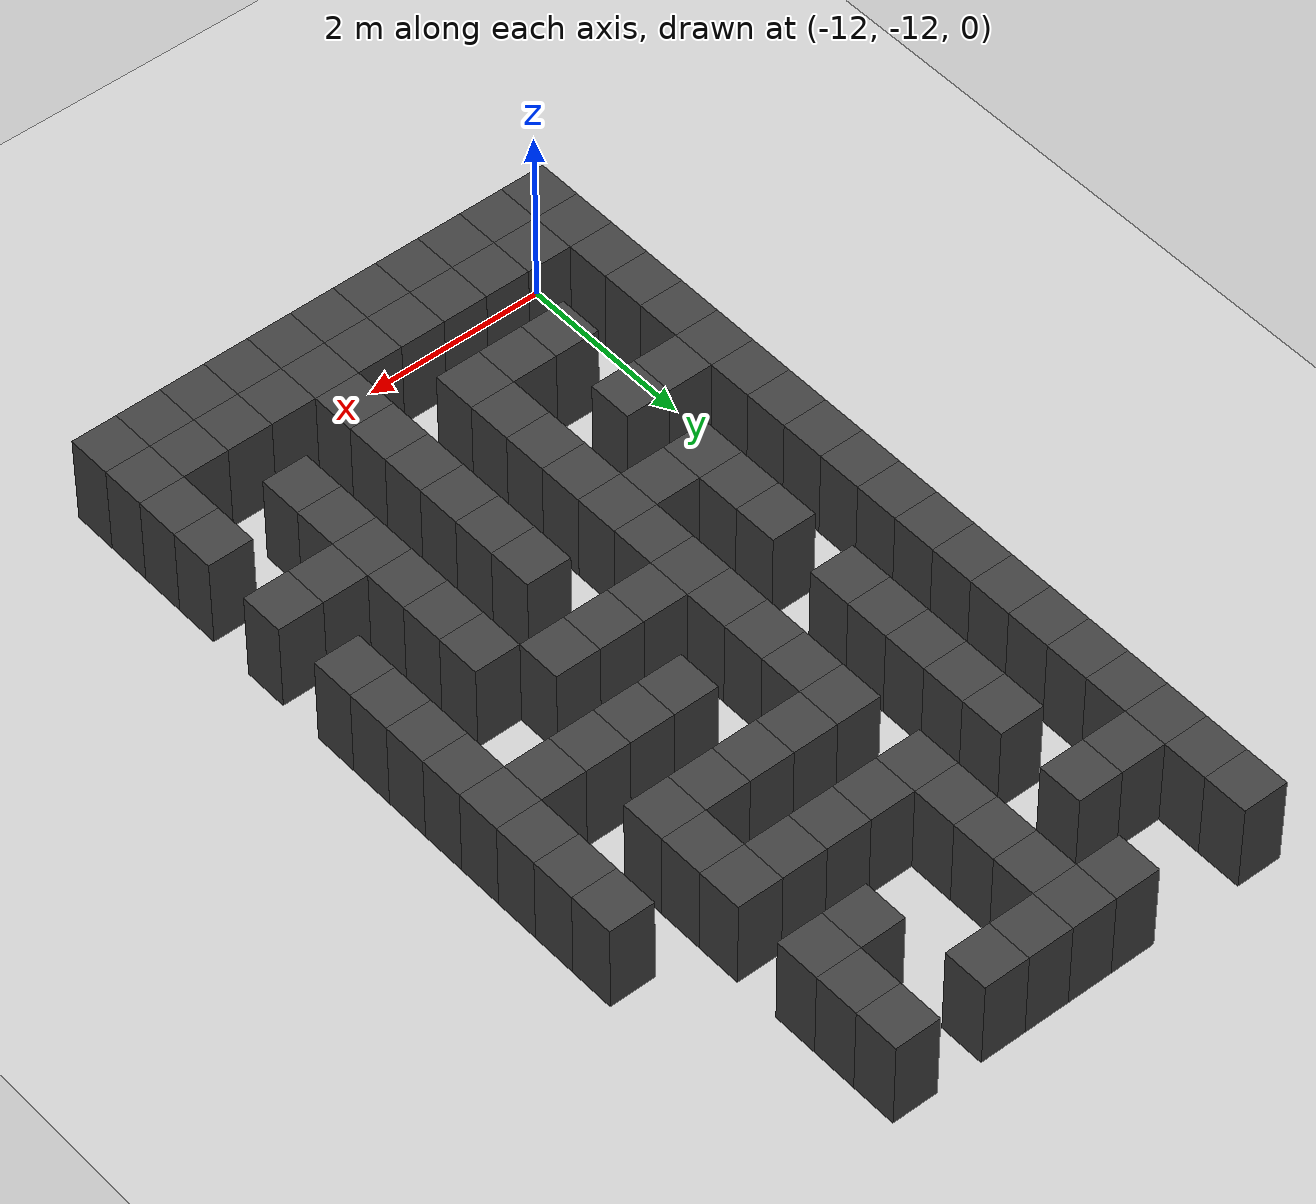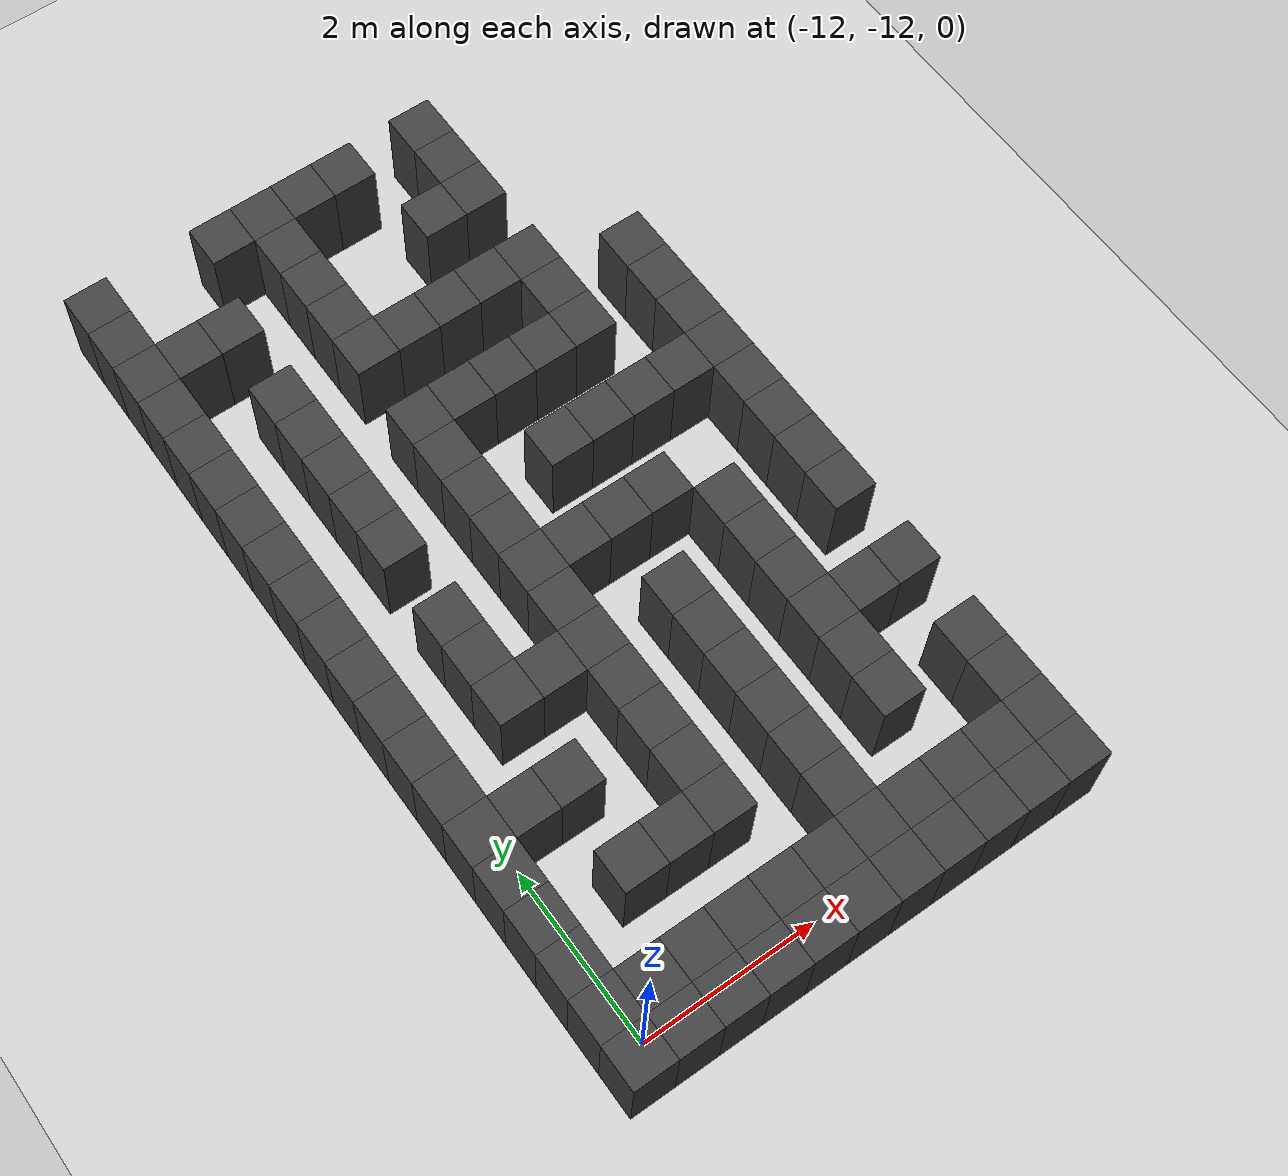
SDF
<sdf version="1.7">
 <world name="map_18596">
  <model name="ground_plane">
   <static>true</static>
   <link name="link">
    <collision name="collision">
     <geometry><plane><normal>0 0 1</normal><size>200 200</size></plane></geometry>
    </collision>
    <visual name="visual">
     <geometry><plane><normal>0 0 1</normal><size>200 200</size></plane></geometry>
     <material><ambient>0.8 0.8 0.8 1</ambient><diffuse>0.8 0.8 0.8 1</diffuse></material>
    </visual>
   </link>
  </model>
  <model name="maze_environment">
   <static>true</static>
   <link name="wall_760">
    <pose>-12.250 -2.750 0.500 0 0 0</pose>
    <collision name="col"><geometry><box><size>0.5 0.5 1.0</size></box></geometry></collision>
    <visual name="vis">
     <geometry><box><size>0.5 0.5 1.0</size></box></geometry>
     <material><ambient>0.15 0.15 0.15 1</ambient><diffuse>0.25 0.25 0.25 1</diffuse></material>
    </visual>
   </link>
   <link name="wall_761">
    <pose>-10.750 -2.750 0.500 0 0 0</pose>
    <collision name="col"><geometry><box><size>0.5 0.5 1.0</size></box></geometry></collision>
    <visual name="vis">
     <geometry><box><size>0.5 0.5 1.0</size></box></geometry>
     <material><ambient>0.15 0.15 0.15 1</ambient><diffuse>0.25 0.25 0.25 1</diffuse></material>
    </visual>
   </link>
   <link name="wall_762">
    <pose>-10.250 -2.750 0.500 0 0 0</pose>
    <collision name="col"><geometry><box><size>0.5 0.5 1.0</size></box></geometry></collision>
    <visual name="vis">
     <geometry><box><size>0.5 0.5 1.0</size></box></geometry>
     <material><ambient>0.15 0.15 0.15 1</ambient><diffuse>0.25 0.25 0.25 1</diffuse></material>
    </visual>
   </link>
   <link name="wall_763">
    <pose>-9.750 -2.750 0.500 0 0 0</pose>
    <collision name="col"><geometry><box><size>0.5 0.5 1.0</size></box></geometry></collision>
    <visual name="vis">
     <geometry><box><size>0.5 0.5 1.0</size></box></geometry>
     <material><ambient>0.15 0.15 0.15 1</ambient><diffuse>0.25 0.25 0.25 1</diffuse></material>
    </visual>
   </link>
   <link name="wall_764">
    <pose>-9.250 -2.750 0.500 0 0 0</pose>
    <collision name="col"><geometry><box><size>0.5 0.5 1.0</size></box></geometry></collision>
    <visual name="vis">
     <geometry><box><size>0.5 0.5 1.0</size></box></geometry>
     <material><ambient>0.15 0.15 0.15 1</ambient><diffuse>0.25 0.25 0.25 1</diffuse></material>
    </visual>
   </link>
   <link name="wall_765">
    <pose>-8.250 -2.750 0.500 0 0 0</pose>
    <collision name="col"><geometry><box><size>0.5 0.5 1.0</size></box></geometry></collision>
    <visual name="vis">
     <geometry><box><size>0.5 0.5 1.0</size></box></geometry>
     <material><ambient>0.15 0.15 0.15 1</ambient><diffuse>0.25 0.25 0.25 1</diffuse></material>
    </visual>
   </link>
   <link name="wall_797">
    <pose>-12.250 -3.250 0.500 0 0 0</pose>
    <collision name="col"><geometry><box><size>0.5 0.5 1.0</size></box></geometry></collision>
    <visual name="vis">
     <geometry><box><size>0.5 0.5 1.0</size></box></geometry>
     <material><ambient>0.15 0.15 0.15 1</ambient><diffuse>0.25 0.25 0.25 1</diffuse></material>
    </visual>
   </link>
   <link name="wall_798">
    <pose>-10.250 -3.250 0.500 0 0 0</pose>
    <collision name="col"><geometry><box><size>0.5 0.5 1.0</size></box></geometry></collision>
    <visual name="vis">
     <geometry><box><size>0.5 0.5 1.0</size></box></geometry>
     <material><ambient>0.15 0.15 0.15 1</ambient><diffuse>0.25 0.25 0.25 1</diffuse></material>
    </visual>
   </link>
   <link name="wall_799">
    <pose>-8.250 -3.250 0.500 0 0 0</pose>
    <collision name="col"><geometry><box><size>0.5 0.5 1.0</size></box></geometry></collision>
    <visual name="vis">
     <geometry><box><size>0.5 0.5 1.0</size></box></geometry>
     <material><ambient>0.15 0.15 0.15 1</ambient><diffuse>0.25 0.25 0.25 1</diffuse></material>
    </visual>
   </link>
   <link name="wall_811">
    <pose>-12.250 -3.750 0.500 0 0 0</pose>
    <collision name="col"><geometry><box><size>0.5 0.5 1.0</size></box></geometry></collision>
    <visual name="vis">
     <geometry><box><size>0.5 0.5 1.0</size></box></geometry>
     <material><ambient>0.15 0.15 0.15 1</ambient><diffuse>0.25 0.25 0.25 1</diffuse></material>
    </visual>
   </link>
   <link name="wall_812">
    <pose>-11.750 -3.750 0.500 0 0 0</pose>
    <collision name="col"><geometry><box><size>0.5 0.5 1.0</size></box></geometry></collision>
    <visual name="vis">
     <geometry><box><size>0.5 0.5 1.0</size></box></geometry>
     <material><ambient>0.15 0.15 0.15 1</ambient><diffuse>0.25 0.25 0.25 1</diffuse></material>
    </visual>
   </link>
   <link name="wall_813">
    <pose>-11.250 -3.750 0.500 0 0 0</pose>
    <collision name="col"><geometry><box><size>0.5 0.5 1.0</size></box></geometry></collision>
    <visual name="vis">
     <geometry><box><size>0.5 0.5 1.0</size></box></geometry>
     <material><ambient>0.15 0.15 0.15 1</ambient><diffuse>0.25 0.25 0.25 1</diffuse></material>
    </visual>
   </link>
   <link name="wall_814">
    <pose>-10.250 -3.750 0.500 0 0 0</pose>
    <collision name="col"><geometry><box><size>0.5 0.5 1.0</size></box></geometry></collision>
    <visual name="vis">
     <geometry><box><size>0.5 0.5 1.0</size></box></geometry>
     <material><ambient>0.15 0.15 0.15 1</ambient><diffuse>0.25 0.25 0.25 1</diffuse></material>
    </visual>
   </link>
   <link name="wall_815">
    <pose>-8.750 -3.750 0.500 0 0 0</pose>
    <collision name="col"><geometry><box><size>0.5 0.5 1.0</size></box></geometry></collision>
    <visual name="vis">
     <geometry><box><size>0.5 0.5 1.0</size></box></geometry>
     <material><ambient>0.15 0.15 0.15 1</ambient><diffuse>0.25 0.25 0.25 1</diffuse></material>
    </visual>
   </link>
   <link name="wall_816">
    <pose>-8.250 -3.750 0.500 0 0 0</pose>
    <collision name="col"><geometry><box><size>0.5 0.5 1.0</size></box></geometry></collision>
    <visual name="vis">
     <geometry><box><size>0.5 0.5 1.0</size></box></geometry>
     <material><ambient>0.15 0.15 0.15 1</ambient><diffuse>0.25 0.25 0.25 1</diffuse></material>
    </visual>
   </link>
   <link name="wall_843">
    <pose>-12.250 -4.250 0.500 0 0 0</pose>
    <collision name="col"><geometry><box><size>0.5 0.5 1.0</size></box></geometry></collision>
    <visual name="vis">
     <geometry><box><size>0.5 0.5 1.0</size></box></geometry>
     <material><ambient>0.15 0.15 0.15 1</ambient><diffuse>0.25 0.25 0.25 1</diffuse></material>
    </visual>
   </link>
   <link name="wall_844">
    <pose>-10.250 -4.250 0.500 0 0 0</pose>
    <collision name="col"><geometry><box><size>0.5 0.5 1.0</size></box></geometry></collision>
    <visual name="vis">
     <geometry><box><size>0.5 0.5 1.0</size></box></geometry>
     <material><ambient>0.15 0.15 0.15 1</ambient><diffuse>0.25 0.25 0.25 1</diffuse></material>
    </visual>
   </link>
   <link name="wall_857">
    <pose>-12.250 -4.750 0.500 0 0 0</pose>
    <collision name="col"><geometry><box><size>0.5 0.5 1.0</size></box></geometry></collision>
    <visual name="vis">
     <geometry><box><size>0.5 0.5 1.0</size></box></geometry>
     <material><ambient>0.15 0.15 0.15 1</ambient><diffuse>0.25 0.25 0.25 1</diffuse></material>
    </visual>
   </link>
   <link name="wall_858">
    <pose>-11.250 -4.750 0.500 0 0 0</pose>
    <collision name="col"><geometry><box><size>0.5 0.5 1.0</size></box></geometry></collision>
    <visual name="vis">
     <geometry><box><size>0.5 0.5 1.0</size></box></geometry>
     <material><ambient>0.15 0.15 0.15 1</ambient><diffuse>0.25 0.25 0.25 1</diffuse></material>
    </visual>
   </link>
   <link name="wall_859">
    <pose>-10.250 -4.750 0.500 0 0 0</pose>
    <collision name="col"><geometry><box><size>0.5 0.5 1.0</size></box></geometry></collision>
    <visual name="vis">
     <geometry><box><size>0.5 0.5 1.0</size></box></geometry>
     <material><ambient>0.15 0.15 0.15 1</ambient><diffuse>0.25 0.25 0.25 1</diffuse></material>
    </visual>
   </link>
   <link name="wall_860">
    <pose>-9.750 -4.750 0.500 0 0 0</pose>
    <collision name="col"><geometry><box><size>0.5 0.5 1.0</size></box></geometry></collision>
    <visual name="vis">
     <geometry><box><size>0.5 0.5 1.0</size></box></geometry>
     <material><ambient>0.15 0.15 0.15 1</ambient><diffuse>0.25 0.25 0.25 1</diffuse></material>
    </visual>
   </link>
   <link name="wall_861">
    <pose>-9.250 -4.750 0.500 0 0 0</pose>
    <collision name="col"><geometry><box><size>0.5 0.5 1.0</size></box></geometry></collision>
    <visual name="vis">
     <geometry><box><size>0.5 0.5 1.0</size></box></geometry>
     <material><ambient>0.15 0.15 0.15 1</ambient><diffuse>0.25 0.25 0.25 1</diffuse></material>
    </visual>
   </link>
   <link name="wall_862">
    <pose>-8.750 -4.750 0.500 0 0 0</pose>
    <collision name="col"><geometry><box><size>0.5 0.5 1.0</size></box></geometry></collision>
    <visual name="vis">
     <geometry><box><size>0.5 0.5 1.0</size></box></geometry>
     <material><ambient>0.15 0.15 0.15 1</ambient><diffuse>0.25 0.25 0.25 1</diffuse></material>
    </visual>
   </link>
   <link name="wall_863">
    <pose>-8.250 -4.750 0.500 0 0 0</pose>
    <collision name="col"><geometry><box><size>0.5 0.5 1.0</size></box></geometry></collision>
    <visual name="vis">
     <geometry><box><size>0.5 0.5 1.0</size></box></geometry>
     <material><ambient>0.15 0.15 0.15 1</ambient><diffuse>0.25 0.25 0.25 1</diffuse></material>
    </visual>
   </link>
   <link name="wall_893">
    <pose>-12.250 -5.250 0.500 0 0 0</pose>
    <collision name="col"><geometry><box><size>0.5 0.5 1.0</size></box></geometry></collision>
    <visual name="vis">
     <geometry><box><size>0.5 0.5 1.0</size></box></geometry>
     <material><ambient>0.15 0.15 0.15 1</ambient><diffuse>0.25 0.25 0.25 1</diffuse></material>
    </visual>
   </link>
   <link name="wall_894">
    <pose>-11.250 -5.250 0.500 0 0 0</pose>
    <collision name="col"><geometry><box><size>0.5 0.5 1.0</size></box></geometry></collision>
    <visual name="vis">
     <geometry><box><size>0.5 0.5 1.0</size></box></geometry>
     <material><ambient>0.15 0.15 0.15 1</ambient><diffuse>0.25 0.25 0.25 1</diffuse></material>
    </visual>
   </link>
   <link name="wall_895">
    <pose>-8.250 -5.250 0.500 0 0 0</pose>
    <collision name="col"><geometry><box><size>0.5 0.5 1.0</size></box></geometry></collision>
    <visual name="vis">
     <geometry><box><size>0.5 0.5 1.0</size></box></geometry>
     <material><ambient>0.15 0.15 0.15 1</ambient><diffuse>0.25 0.25 0.25 1</diffuse></material>
    </visual>
   </link>
   <link name="wall_896">
    <pose>-7.250 -5.250 0.500 0 0 0</pose>
    <collision name="col"><geometry><box><size>0.5 0.5 1.0</size></box></geometry></collision>
    <visual name="vis">
     <geometry><box><size>0.5 0.5 1.0</size></box></geometry>
     <material><ambient>0.15 0.15 0.15 1</ambient><diffuse>0.25 0.25 0.25 1</diffuse></material>
    </visual>
   </link>
   <link name="wall_907">
    <pose>-12.250 -5.750 0.500 0 0 0</pose>
    <collision name="col"><geometry><box><size>0.5 0.5 1.0</size></box></geometry></collision>
    <visual name="vis">
     <geometry><box><size>0.5 0.5 1.0</size></box></geometry>
     <material><ambient>0.15 0.15 0.15 1</ambient><diffuse>0.25 0.25 0.25 1</diffuse></material>
    </visual>
   </link>
   <link name="wall_908">
    <pose>-11.250 -5.750 0.500 0 0 0</pose>
    <collision name="col"><geometry><box><size>0.5 0.5 1.0</size></box></geometry></collision>
    <visual name="vis">
     <geometry><box><size>0.5 0.5 1.0</size></box></geometry>
     <material><ambient>0.15 0.15 0.15 1</ambient><diffuse>0.25 0.25 0.25 1</diffuse></material>
    </visual>
   </link>
   <link name="wall_909">
    <pose>-10.250 -5.750 0.500 0 0 0</pose>
    <collision name="col"><geometry><box><size>0.5 0.5 1.0</size></box></geometry></collision>
    <visual name="vis">
     <geometry><box><size>0.5 0.5 1.0</size></box></geometry>
     <material><ambient>0.15 0.15 0.15 1</ambient><diffuse>0.25 0.25 0.25 1</diffuse></material>
    </visual>
   </link>
   <link name="wall_910">
    <pose>-9.750 -5.750 0.500 0 0 0</pose>
    <collision name="col"><geometry><box><size>0.5 0.5 1.0</size></box></geometry></collision>
    <visual name="vis">
     <geometry><box><size>0.5 0.5 1.0</size></box></geometry>
     <material><ambient>0.15 0.15 0.15 1</ambient><diffuse>0.25 0.25 0.25 1</diffuse></material>
    </visual>
   </link>
   <link name="wall_911">
    <pose>-9.250 -5.750 0.500 0 0 0</pose>
    <collision name="col"><geometry><box><size>0.5 0.5 1.0</size></box></geometry></collision>
    <visual name="vis">
     <geometry><box><size>0.5 0.5 1.0</size></box></geometry>
     <material><ambient>0.15 0.15 0.15 1</ambient><diffuse>0.25 0.25 0.25 1</diffuse></material>
    </visual>
   </link>
   <link name="wall_912">
    <pose>-8.750 -5.750 0.500 0 0 0</pose>
    <collision name="col"><geometry><box><size>0.5 0.5 1.0</size></box></geometry></collision>
    <visual name="vis">
     <geometry><box><size>0.5 0.5 1.0</size></box></geometry>
     <material><ambient>0.15 0.15 0.15 1</ambient><diffuse>0.25 0.25 0.25 1</diffuse></material>
    </visual>
   </link>
   <link name="wall_913">
    <pose>-8.250 -5.750 0.500 0 0 0</pose>
    <collision name="col"><geometry><box><size>0.5 0.5 1.0</size></box></geometry></collision>
    <visual name="vis">
     <geometry><box><size>0.5 0.5 1.0</size></box></geometry>
     <material><ambient>0.15 0.15 0.15 1</ambient><diffuse>0.25 0.25 0.25 1</diffuse></material>
    </visual>
   </link>
   <link name="wall_914">
    <pose>-7.250 -5.750 0.500 0 0 0</pose>
    <collision name="col"><geometry><box><size>0.5 0.5 1.0</size></box></geometry></collision>
    <visual name="vis">
     <geometry><box><size>0.5 0.5 1.0</size></box></geometry>
     <material><ambient>0.15 0.15 0.15 1</ambient><diffuse>0.25 0.25 0.25 1</diffuse></material>
    </visual>
   </link>
   <link name="wall_940">
    <pose>-12.250 -6.250 0.500 0 0 0</pose>
    <collision name="col"><geometry><box><size>0.5 0.5 1.0</size></box></geometry></collision>
    <visual name="vis">
     <geometry><box><size>0.5 0.5 1.0</size></box></geometry>
     <material><ambient>0.15 0.15 0.15 1</ambient><diffuse>0.25 0.25 0.25 1</diffuse></material>
    </visual>
   </link>
   <link name="wall_941">
    <pose>-11.250 -6.250 0.500 0 0 0</pose>
    <collision name="col"><geometry><box><size>0.5 0.5 1.0</size></box></geometry></collision>
    <visual name="vis">
     <geometry><box><size>0.5 0.5 1.0</size></box></geometry>
     <material><ambient>0.15 0.15 0.15 1</ambient><diffuse>0.25 0.25 0.25 1</diffuse></material>
    </visual>
   </link>
   <link name="wall_942">
    <pose>-10.250 -6.250 0.500 0 0 0</pose>
    <collision name="col"><geometry><box><size>0.5 0.5 1.0</size></box></geometry></collision>
    <visual name="vis">
     <geometry><box><size>0.5 0.5 1.0</size></box></geometry>
     <material><ambient>0.15 0.15 0.15 1</ambient><diffuse>0.25 0.25 0.25 1</diffuse></material>
    </visual>
   </link>
   <link name="wall_943">
    <pose>-7.250 -6.250 0.500 0 0 0</pose>
    <collision name="col"><geometry><box><size>0.5 0.5 1.0</size></box></geometry></collision>
    <visual name="vis">
     <geometry><box><size>0.5 0.5 1.0</size></box></geometry>
     <material><ambient>0.15 0.15 0.15 1</ambient><diffuse>0.25 0.25 0.25 1</diffuse></material>
    </visual>
   </link>
   <link name="wall_957">
    <pose>-12.250 -6.750 0.500 0 0 0</pose>
    <collision name="col"><geometry><box><size>0.5 0.5 1.0</size></box></geometry></collision>
    <visual name="vis">
     <geometry><box><size>0.5 0.5 1.0</size></box></geometry>
     <material><ambient>0.15 0.15 0.15 1</ambient><diffuse>0.25 0.25 0.25 1</diffuse></material>
    </visual>
   </link>
   <link name="wall_958">
    <pose>-11.250 -6.750 0.500 0 0 0</pose>
    <collision name="col"><geometry><box><size>0.5 0.5 1.0</size></box></geometry></collision>
    <visual name="vis">
     <geometry><box><size>0.5 0.5 1.0</size></box></geometry>
     <material><ambient>0.15 0.15 0.15 1</ambient><diffuse>0.25 0.25 0.25 1</diffuse></material>
    </visual>
   </link>
   <link name="wall_959">
    <pose>-10.250 -6.750 0.500 0 0 0</pose>
    <collision name="col"><geometry><box><size>0.5 0.5 1.0</size></box></geometry></collision>
    <visual name="vis">
     <geometry><box><size>0.5 0.5 1.0</size></box></geometry>
     <material><ambient>0.15 0.15 0.15 1</ambient><diffuse>0.25 0.25 0.25 1</diffuse></material>
    </visual>
   </link>
   <link name="wall_960">
    <pose>-9.250 -6.750 0.500 0 0 0</pose>
    <collision name="col"><geometry><box><size>0.5 0.5 1.0</size></box></geometry></collision>
    <visual name="vis">
     <geometry><box><size>0.5 0.5 1.0</size></box></geometry>
     <material><ambient>0.15 0.15 0.15 1</ambient><diffuse>0.25 0.25 0.25 1</diffuse></material>
    </visual>
   </link>
   <link name="wall_961">
    <pose>-8.750 -6.750 0.500 0 0 0</pose>
    <collision name="col"><geometry><box><size>0.5 0.5 1.0</size></box></geometry></collision>
    <visual name="vis">
     <geometry><box><size>0.5 0.5 1.0</size></box></geometry>
     <material><ambient>0.15 0.15 0.15 1</ambient><diffuse>0.25 0.25 0.25 1</diffuse></material>
    </visual>
   </link>
   <link name="wall_962">
    <pose>-8.250 -6.750 0.500 0 0 0</pose>
    <collision name="col"><geometry><box><size>0.5 0.5 1.0</size></box></geometry></collision>
    <visual name="vis">
     <geometry><box><size>0.5 0.5 1.0</size></box></geometry>
     <material><ambient>0.15 0.15 0.15 1</ambient><diffuse>0.25 0.25 0.25 1</diffuse></material>
    </visual>
   </link>
   <link name="wall_963">
    <pose>-7.750 -6.750 0.500 0 0 0</pose>
    <collision name="col"><geometry><box><size>0.5 0.5 1.0</size></box></geometry></collision>
    <visual name="vis">
     <geometry><box><size>0.5 0.5 1.0</size></box></geometry>
     <material><ambient>0.15 0.15 0.15 1</ambient><diffuse>0.25 0.25 0.25 1</diffuse></material>
    </visual>
   </link>
   <link name="wall_964">
    <pose>-7.250 -6.750 0.500 0 0 0</pose>
    <collision name="col"><geometry><box><size>0.5 0.5 1.0</size></box></geometry></collision>
    <visual name="vis">
     <geometry><box><size>0.5 0.5 1.0</size></box></geometry>
     <material><ambient>0.15 0.15 0.15 1</ambient><diffuse>0.25 0.25 0.25 1</diffuse></material>
    </visual>
   </link>
   <link name="wall_992">
    <pose>-12.250 -7.250 0.500 0 0 0</pose>
    <collision name="col"><geometry><box><size>0.5 0.5 1.0</size></box></geometry></collision>
    <visual name="vis">
     <geometry><box><size>0.5 0.5 1.0</size></box></geometry>
     <material><ambient>0.15 0.15 0.15 1</ambient><diffuse>0.25 0.25 0.25 1</diffuse></material>
    </visual>
   </link>
   <link name="wall_993">
    <pose>-10.250 -7.250 0.500 0 0 0</pose>
    <collision name="col"><geometry><box><size>0.5 0.5 1.0</size></box></geometry></collision>
    <visual name="vis">
     <geometry><box><size>0.5 0.5 1.0</size></box></geometry>
     <material><ambient>0.15 0.15 0.15 1</ambient><diffuse>0.25 0.25 0.25 1</diffuse></material>
    </visual>
   </link>
   <link name="wall_994">
    <pose>-7.250 -7.250 0.500 0 0 0</pose>
    <collision name="col"><geometry><box><size>0.5 0.5 1.0</size></box></geometry></collision>
    <visual name="vis">
     <geometry><box><size>0.5 0.5 1.0</size></box></geometry>
     <material><ambient>0.15 0.15 0.15 1</ambient><diffuse>0.25 0.25 0.25 1</diffuse></material>
    </visual>
   </link>
   <link name="wall_1008">
    <pose>-12.250 -7.750 0.500 0 0 0</pose>
    <collision name="col"><geometry><box><size>0.5 0.5 1.0</size></box></geometry></collision>
    <visual name="vis">
     <geometry><box><size>0.5 0.5 1.0</size></box></geometry>
     <material><ambient>0.15 0.15 0.15 1</ambient><diffuse>0.25 0.25 0.25 1</diffuse></material>
    </visual>
   </link>
   <link name="wall_1009">
    <pose>-11.250 -7.750 0.500 0 0 0</pose>
    <collision name="col"><geometry><box><size>0.5 0.5 1.0</size></box></geometry></collision>
    <visual name="vis">
     <geometry><box><size>0.5 0.5 1.0</size></box></geometry>
     <material><ambient>0.15 0.15 0.15 1</ambient><diffuse>0.25 0.25 0.25 1</diffuse></material>
    </visual>
   </link>
   <link name="wall_1010">
    <pose>-10.250 -7.750 0.500 0 0 0</pose>
    <collision name="col"><geometry><box><size>0.5 0.5 1.0</size></box></geometry></collision>
    <visual name="vis">
     <geometry><box><size>0.5 0.5 1.0</size></box></geometry>
     <material><ambient>0.15 0.15 0.15 1</ambient><diffuse>0.25 0.25 0.25 1</diffuse></material>
    </visual>
   </link>
   <link name="wall_1011">
    <pose>-9.750 -7.750 0.500 0 0 0</pose>
    <collision name="col"><geometry><box><size>0.5 0.5 1.0</size></box></geometry></collision>
    <visual name="vis">
     <geometry><box><size>0.5 0.5 1.0</size></box></geometry>
     <material><ambient>0.15 0.15 0.15 1</ambient><diffuse>0.25 0.25 0.25 1</diffuse></material>
    </visual>
   </link>
   <link name="wall_1012">
    <pose>-9.250 -7.750 0.500 0 0 0</pose>
    <collision name="col"><geometry><box><size>0.5 0.5 1.0</size></box></geometry></collision>
    <visual name="vis">
     <geometry><box><size>0.5 0.5 1.0</size></box></geometry>
     <material><ambient>0.15 0.15 0.15 1</ambient><diffuse>0.25 0.25 0.25 1</diffuse></material>
    </visual>
   </link>
   <link name="wall_1013">
    <pose>-8.750 -7.750 0.500 0 0 0</pose>
    <collision name="col"><geometry><box><size>0.5 0.5 1.0</size></box></geometry></collision>
    <visual name="vis">
     <geometry><box><size>0.5 0.5 1.0</size></box></geometry>
     <material><ambient>0.15 0.15 0.15 1</ambient><diffuse>0.25 0.25 0.25 1</diffuse></material>
    </visual>
   </link>
   <link name="wall_1014">
    <pose>-7.250 -7.750 0.500 0 0 0</pose>
    <collision name="col"><geometry><box><size>0.5 0.5 1.0</size></box></geometry></collision>
    <visual name="vis">
     <geometry><box><size>0.5 0.5 1.0</size></box></geometry>
     <material><ambient>0.15 0.15 0.15 1</ambient><diffuse>0.25 0.25 0.25 1</diffuse></material>
    </visual>
   </link>
   <link name="wall_1042">
    <pose>-12.250 -8.250 0.500 0 0 0</pose>
    <collision name="col"><geometry><box><size>0.5 0.5 1.0</size></box></geometry></collision>
    <visual name="vis">
     <geometry><box><size>0.5 0.5 1.0</size></box></geometry>
     <material><ambient>0.15 0.15 0.15 1</ambient><diffuse>0.25 0.25 0.25 1</diffuse></material>
    </visual>
   </link>
   <link name="wall_1043">
    <pose>-11.250 -8.250 0.500 0 0 0</pose>
    <collision name="col"><geometry><box><size>0.5 0.5 1.0</size></box></geometry></collision>
    <visual name="vis">
     <geometry><box><size>0.5 0.5 1.0</size></box></geometry>
     <material><ambient>0.15 0.15 0.15 1</ambient><diffuse>0.25 0.25 0.25 1</diffuse></material>
    </visual>
   </link>
   <link name="wall_1044">
    <pose>-10.250 -8.250 0.500 0 0 0</pose>
    <collision name="col"><geometry><box><size>0.5 0.5 1.0</size></box></geometry></collision>
    <visual name="vis">
     <geometry><box><size>0.5 0.5 1.0</size></box></geometry>
     <material><ambient>0.15 0.15 0.15 1</ambient><diffuse>0.25 0.25 0.25 1</diffuse></material>
    </visual>
   </link>
   <link name="wall_1045">
    <pose>-8.250 -8.250 0.500 0 0 0</pose>
    <collision name="col"><geometry><box><size>0.5 0.5 1.0</size></box></geometry></collision>
    <visual name="vis">
     <geometry><box><size>0.5 0.5 1.0</size></box></geometry>
     <material><ambient>0.15 0.15 0.15 1</ambient><diffuse>0.25 0.25 0.25 1</diffuse></material>
    </visual>
   </link>
   <link name="wall_1046">
    <pose>-7.250 -8.250 0.500 0 0 0</pose>
    <collision name="col"><geometry><box><size>0.5 0.5 1.0</size></box></geometry></collision>
    <visual name="vis">
     <geometry><box><size>0.5 0.5 1.0</size></box></geometry>
     <material><ambient>0.15 0.15 0.15 1</ambient><diffuse>0.25 0.25 0.25 1</diffuse></material>
    </visual>
   </link>
   <link name="wall_1056">
    <pose>-12.250 -8.750 0.500 0 0 0</pose>
    <collision name="col"><geometry><box><size>0.5 0.5 1.0</size></box></geometry></collision>
    <visual name="vis">
     <geometry><box><size>0.5 0.5 1.0</size></box></geometry>
     <material><ambient>0.15 0.15 0.15 1</ambient><diffuse>0.25 0.25 0.25 1</diffuse></material>
    </visual>
   </link>
   <link name="wall_1057">
    <pose>-11.250 -8.750 0.500 0 0 0</pose>
    <collision name="col"><geometry><box><size>0.5 0.5 1.0</size></box></geometry></collision>
    <visual name="vis">
     <geometry><box><size>0.5 0.5 1.0</size></box></geometry>
     <material><ambient>0.15 0.15 0.15 1</ambient><diffuse>0.25 0.25 0.25 1</diffuse></material>
    </visual>
   </link>
   <link name="wall_1058">
    <pose>-10.750 -8.750 0.500 0 0 0</pose>
    <collision name="col"><geometry><box><size>0.5 0.5 1.0</size></box></geometry></collision>
    <visual name="vis">
     <geometry><box><size>0.5 0.5 1.0</size></box></geometry>
     <material><ambient>0.15 0.15 0.15 1</ambient><diffuse>0.25 0.25 0.25 1</diffuse></material>
    </visual>
   </link>
   <link name="wall_1059">
    <pose>-10.250 -8.750 0.500 0 0 0</pose>
    <collision name="col"><geometry><box><size>0.5 0.5 1.0</size></box></geometry></collision>
    <visual name="vis">
     <geometry><box><size>0.5 0.5 1.0</size></box></geometry>
     <material><ambient>0.15 0.15 0.15 1</ambient><diffuse>0.25 0.25 0.25 1</diffuse></material>
    </visual>
   </link>
   <link name="wall_1060">
    <pose>-9.250 -8.750 0.500 0 0 0</pose>
    <collision name="col"><geometry><box><size>0.5 0.5 1.0</size></box></geometry></collision>
    <visual name="vis">
     <geometry><box><size>0.5 0.5 1.0</size></box></geometry>
     <material><ambient>0.15 0.15 0.15 1</ambient><diffuse>0.25 0.25 0.25 1</diffuse></material>
    </visual>
   </link>
   <link name="wall_1061">
    <pose>-8.250 -8.750 0.500 0 0 0</pose>
    <collision name="col"><geometry><box><size>0.5 0.5 1.0</size></box></geometry></collision>
    <visual name="vis">
     <geometry><box><size>0.5 0.5 1.0</size></box></geometry>
     <material><ambient>0.15 0.15 0.15 1</ambient><diffuse>0.25 0.25 0.25 1</diffuse></material>
    </visual>
   </link>
   <link name="wall_1062">
    <pose>-7.250 -8.750 0.500 0 0 0</pose>
    <collision name="col"><geometry><box><size>0.5 0.5 1.0</size></box></geometry></collision>
    <visual name="vis">
     <geometry><box><size>0.5 0.5 1.0</size></box></geometry>
     <material><ambient>0.15 0.15 0.15 1</ambient><diffuse>0.25 0.25 0.25 1</diffuse></material>
    </visual>
   </link>
   <link name="wall_1091">
    <pose>-12.250 -9.250 0.500 0 0 0</pose>
    <collision name="col"><geometry><box><size>0.5 0.5 1.0</size></box></geometry></collision>
    <visual name="vis">
     <geometry><box><size>0.5 0.5 1.0</size></box></geometry>
     <material><ambient>0.15 0.15 0.15 1</ambient><diffuse>0.25 0.25 0.25 1</diffuse></material>
    </visual>
   </link>
   <link name="wall_1092">
    <pose>-10.250 -9.250 0.500 0 0 0</pose>
    <collision name="col"><geometry><box><size>0.5 0.5 1.0</size></box></geometry></collision>
    <visual name="vis">
     <geometry><box><size>0.5 0.5 1.0</size></box></geometry>
     <material><ambient>0.15 0.15 0.15 1</ambient><diffuse>0.25 0.25 0.25 1</diffuse></material>
    </visual>
   </link>
   <link name="wall_1093">
    <pose>-9.250 -9.250 0.500 0 0 0</pose>
    <collision name="col"><geometry><box><size>0.5 0.5 1.0</size></box></geometry></collision>
    <visual name="vis">
     <geometry><box><size>0.5 0.5 1.0</size></box></geometry>
     <material><ambient>0.15 0.15 0.15 1</ambient><diffuse>0.25 0.25 0.25 1</diffuse></material>
    </visual>
   </link>
   <link name="wall_1094">
    <pose>-8.250 -9.250 0.500 0 0 0</pose>
    <collision name="col"><geometry><box><size>0.5 0.5 1.0</size></box></geometry></collision>
    <visual name="vis">
     <geometry><box><size>0.5 0.5 1.0</size></box></geometry>
     <material><ambient>0.15 0.15 0.15 1</ambient><diffuse>0.25 0.25 0.25 1</diffuse></material>
    </visual>
   </link>
   <link name="wall_1105">
    <pose>-12.250 -9.750 0.500 0 0 0</pose>
    <collision name="col"><geometry><box><size>0.5 0.5 1.0</size></box></geometry></collision>
    <visual name="vis">
     <geometry><box><size>0.5 0.5 1.0</size></box></geometry>
     <material><ambient>0.15 0.15 0.15 1</ambient><diffuse>0.25 0.25 0.25 1</diffuse></material>
    </visual>
   </link>
   <link name="wall_1106">
    <pose>-11.750 -9.750 0.500 0 0 0</pose>
    <collision name="col"><geometry><box><size>0.5 0.5 1.0</size></box></geometry></collision>
    <visual name="vis">
     <geometry><box><size>0.5 0.5 1.0</size></box></geometry>
     <material><ambient>0.15 0.15 0.15 1</ambient><diffuse>0.25 0.25 0.25 1</diffuse></material>
    </visual>
   </link>
   <link name="wall_1107">
    <pose>-11.250 -9.750 0.500 0 0 0</pose>
    <collision name="col"><geometry><box><size>0.5 0.5 1.0</size></box></geometry></collision>
    <visual name="vis">
     <geometry><box><size>0.5 0.5 1.0</size></box></geometry>
     <material><ambient>0.15 0.15 0.15 1</ambient><diffuse>0.25 0.25 0.25 1</diffuse></material>
    </visual>
   </link>
   <link name="wall_1108">
    <pose>-10.250 -9.750 0.500 0 0 0</pose>
    <collision name="col"><geometry><box><size>0.5 0.5 1.0</size></box></geometry></collision>
    <visual name="vis">
     <geometry><box><size>0.5 0.5 1.0</size></box></geometry>
     <material><ambient>0.15 0.15 0.15 1</ambient><diffuse>0.25 0.25 0.25 1</diffuse></material>
    </visual>
   </link>
   <link name="wall_1109">
    <pose>-9.250 -9.750 0.500 0 0 0</pose>
    <collision name="col"><geometry><box><size>0.5 0.5 1.0</size></box></geometry></collision>
    <visual name="vis">
     <geometry><box><size>0.5 0.5 1.0</size></box></geometry>
     <material><ambient>0.15 0.15 0.15 1</ambient><diffuse>0.25 0.25 0.25 1</diffuse></material>
    </visual>
   </link>
   <link name="wall_1110">
    <pose>-8.250 -9.750 0.500 0 0 0</pose>
    <collision name="col"><geometry><box><size>0.5 0.5 1.0</size></box></geometry></collision>
    <visual name="vis">
     <geometry><box><size>0.5 0.5 1.0</size></box></geometry>
     <material><ambient>0.15 0.15 0.15 1</ambient><diffuse>0.25 0.25 0.25 1</diffuse></material>
    </visual>
   </link>
   <link name="wall_1111">
    <pose>-7.750 -9.750 0.500 0 0 0</pose>
    <collision name="col"><geometry><box><size>0.5 0.5 1.0</size></box></geometry></collision>
    <visual name="vis">
     <geometry><box><size>0.5 0.5 1.0</size></box></geometry>
     <material><ambient>0.15 0.15 0.15 1</ambient><diffuse>0.25 0.25 0.25 1</diffuse></material>
    </visual>
   </link>
   <link name="wall_1112">
    <pose>-7.250 -9.750 0.500 0 0 0</pose>
    <collision name="col"><geometry><box><size>0.5 0.5 1.0</size></box></geometry></collision>
    <visual name="vis">
     <geometry><box><size>0.5 0.5 1.0</size></box></geometry>
     <material><ambient>0.15 0.15 0.15 1</ambient><diffuse>0.25 0.25 0.25 1</diffuse></material>
    </visual>
   </link>
   <link name="wall_1145">
    <pose>-12.250 -10.250 0.500 0 0 0</pose>
    <collision name="col"><geometry><box><size>0.5 0.5 1.0</size></box></geometry></collision>
    <visual name="vis">
     <geometry><box><size>0.5 0.5 1.0</size></box></geometry>
     <material><ambient>0.15 0.15 0.15 1</ambient><diffuse>0.25 0.25 0.25 1</diffuse></material>
    </visual>
   </link>
   <link name="wall_1146">
    <pose>-10.250 -10.250 0.500 0 0 0</pose>
    <collision name="col"><geometry><box><size>0.5 0.5 1.0</size></box></geometry></collision>
    <visual name="vis">
     <geometry><box><size>0.5 0.5 1.0</size></box></geometry>
     <material><ambient>0.15 0.15 0.15 1</ambient><diffuse>0.25 0.25 0.25 1</diffuse></material>
    </visual>
   </link>
   <link name="wall_1147">
    <pose>-9.250 -10.250 0.500 0 0 0</pose>
    <collision name="col"><geometry><box><size>0.5 0.5 1.0</size></box></geometry></collision>
    <visual name="vis">
     <geometry><box><size>0.5 0.5 1.0</size></box></geometry>
     <material><ambient>0.15 0.15 0.15 1</ambient><diffuse>0.25 0.25 0.25 1</diffuse></material>
    </visual>
   </link>
   <link name="wall_1148">
    <pose>-8.250 -10.250 0.500 0 0 0</pose>
    <collision name="col"><geometry><box><size>0.5 0.5 1.0</size></box></geometry></collision>
    <visual name="vis">
     <geometry><box><size>0.5 0.5 1.0</size></box></geometry>
     <material><ambient>0.15 0.15 0.15 1</ambient><diffuse>0.25 0.25 0.25 1</diffuse></material>
    </visual>
   </link>
   <link name="wall_1159">
    <pose>-12.250 -10.750 0.500 0 0 0</pose>
    <collision name="col"><geometry><box><size>0.5 0.5 1.0</size></box></geometry></collision>
    <visual name="vis">
     <geometry><box><size>0.5 0.5 1.0</size></box></geometry>
     <material><ambient>0.15 0.15 0.15 1</ambient><diffuse>0.25 0.25 0.25 1</diffuse></material>
    </visual>
   </link>
   <link name="wall_1160">
    <pose>-11.250 -10.750 0.500 0 0 0</pose>
    <collision name="col"><geometry><box><size>0.5 0.5 1.0</size></box></geometry></collision>
    <visual name="vis">
     <geometry><box><size>0.5 0.5 1.0</size></box></geometry>
     <material><ambient>0.15 0.15 0.15 1</ambient><diffuse>0.25 0.25 0.25 1</diffuse></material>
    </visual>
   </link>
   <link name="wall_1161">
    <pose>-10.750 -10.750 0.500 0 0 0</pose>
    <collision name="col"><geometry><box><size>0.5 0.5 1.0</size></box></geometry></collision>
    <visual name="vis">
     <geometry><box><size>0.5 0.5 1.0</size></box></geometry>
     <material><ambient>0.15 0.15 0.15 1</ambient><diffuse>0.25 0.25 0.25 1</diffuse></material>
    </visual>
   </link>
   <link name="wall_1162">
    <pose>-10.250 -10.750 0.500 0 0 0</pose>
    <collision name="col"><geometry><box><size>0.5 0.5 1.0</size></box></geometry></collision>
    <visual name="vis">
     <geometry><box><size>0.5 0.5 1.0</size></box></geometry>
     <material><ambient>0.15 0.15 0.15 1</ambient><diffuse>0.25 0.25 0.25 1</diffuse></material>
    </visual>
   </link>
   <link name="wall_1163">
    <pose>-9.250 -10.750 0.500 0 0 0</pose>
    <collision name="col"><geometry><box><size>0.5 0.5 1.0</size></box></geometry></collision>
    <visual name="vis">
     <geometry><box><size>0.5 0.5 1.0</size></box></geometry>
     <material><ambient>0.15 0.15 0.15 1</ambient><diffuse>0.25 0.25 0.25 1</diffuse></material>
    </visual>
   </link>
   <link name="wall_1164">
    <pose>-8.250 -10.750 0.500 0 0 0</pose>
    <collision name="col"><geometry><box><size>0.5 0.5 1.0</size></box></geometry></collision>
    <visual name="vis">
     <geometry><box><size>0.5 0.5 1.0</size></box></geometry>
     <material><ambient>0.15 0.15 0.15 1</ambient><diffuse>0.25 0.25 0.25 1</diffuse></material>
    </visual>
   </link>
   <link name="wall_1165">
    <pose>-7.250 -10.750 0.500 0 0 0</pose>
    <collision name="col"><geometry><box><size>0.5 0.5 1.0</size></box></geometry></collision>
    <visual name="vis">
     <geometry><box><size>0.5 0.5 1.0</size></box></geometry>
     <material><ambient>0.15 0.15 0.15 1</ambient><diffuse>0.25 0.25 0.25 1</diffuse></material>
    </visual>
   </link>
   <link name="wall_1194">
    <pose>-12.250 -11.250 0.500 0 0 0</pose>
    <collision name="col"><geometry><box><size>0.5 0.5 1.0</size></box></geometry></collision>
    <visual name="vis">
     <geometry><box><size>0.5 0.5 1.0</size></box></geometry>
     <material><ambient>0.15 0.15 0.15 1</ambient><diffuse>0.25 0.25 0.25 1</diffuse></material>
    </visual>
   </link>
   <link name="wall_1195">
    <pose>-9.250 -11.250 0.500 0 0 0</pose>
    <collision name="col"><geometry><box><size>0.5 0.5 1.0</size></box></geometry></collision>
    <visual name="vis">
     <geometry><box><size>0.5 0.5 1.0</size></box></geometry>
     <material><ambient>0.15 0.15 0.15 1</ambient><diffuse>0.25 0.25 0.25 1</diffuse></material>
    </visual>
   </link>
   <link name="wall_1196">
    <pose>-7.250 -11.250 0.500 0 0 0</pose>
    <collision name="col"><geometry><box><size>0.5 0.5 1.0</size></box></geometry></collision>
    <visual name="vis">
     <geometry><box><size>0.5 0.5 1.0</size></box></geometry>
     <material><ambient>0.15 0.15 0.15 1</ambient><diffuse>0.25 0.25 0.25 1</diffuse></material>
    </visual>
   </link>
   <link name="wall_1202">
    <pose>-12.250 -11.750 0.500 0 0 0</pose>
    <collision name="col"><geometry><box><size>0.5 0.5 1.0</size></box></geometry></collision>
    <visual name="vis">
     <geometry><box><size>0.5 0.5 1.0</size></box></geometry>
     <material><ambient>0.15 0.15 0.15 1</ambient><diffuse>0.25 0.25 0.25 1</diffuse></material>
    </visual>
   </link>
   <link name="wall_1203">
    <pose>-11.750 -11.750 0.500 0 0 0</pose>
    <collision name="col"><geometry><box><size>0.5 0.5 1.0</size></box></geometry></collision>
    <visual name="vis">
     <geometry><box><size>0.5 0.5 1.0</size></box></geometry>
     <material><ambient>0.15 0.15 0.15 1</ambient><diffuse>0.25 0.25 0.25 1</diffuse></material>
    </visual>
   </link>
   <link name="wall_1204">
    <pose>-11.250 -11.750 0.500 0 0 0</pose>
    <collision name="col"><geometry><box><size>0.5 0.5 1.0</size></box></geometry></collision>
    <visual name="vis">
     <geometry><box><size>0.5 0.5 1.0</size></box></geometry>
     <material><ambient>0.15 0.15 0.15 1</ambient><diffuse>0.25 0.25 0.25 1</diffuse></material>
    </visual>
   </link>
   <link name="wall_1205">
    <pose>-10.750 -11.750 0.500 0 0 0</pose>
    <collision name="col"><geometry><box><size>0.5 0.5 1.0</size></box></geometry></collision>
    <visual name="vis">
     <geometry><box><size>0.5 0.5 1.0</size></box></geometry>
     <material><ambient>0.15 0.15 0.15 1</ambient><diffuse>0.25 0.25 0.25 1</diffuse></material>
    </visual>
   </link>
   <link name="wall_1206">
    <pose>-10.250 -11.750 0.500 0 0 0</pose>
    <collision name="col"><geometry><box><size>0.5 0.5 1.0</size></box></geometry></collision>
    <visual name="vis">
     <geometry><box><size>0.5 0.5 1.0</size></box></geometry>
     <material><ambient>0.15 0.15 0.15 1</ambient><diffuse>0.25 0.25 0.25 1</diffuse></material>
    </visual>
   </link>
   <link name="wall_1207">
    <pose>-9.750 -11.750 0.500 0 0 0</pose>
    <collision name="col"><geometry><box><size>0.5 0.5 1.0</size></box></geometry></collision>
    <visual name="vis">
     <geometry><box><size>0.5 0.5 1.0</size></box></geometry>
     <material><ambient>0.15 0.15 0.15 1</ambient><diffuse>0.25 0.25 0.25 1</diffuse></material>
    </visual>
   </link>
   <link name="wall_1208">
    <pose>-9.250 -11.750 0.500 0 0 0</pose>
    <collision name="col"><geometry><box><size>0.5 0.5 1.0</size></box></geometry></collision>
    <visual name="vis">
     <geometry><box><size>0.5 0.5 1.0</size></box></geometry>
     <material><ambient>0.15 0.15 0.15 1</ambient><diffuse>0.25 0.25 0.25 1</diffuse></material>
    </visual>
   </link>
   <link name="wall_1209">
    <pose>-8.750 -11.750 0.500 0 0 0</pose>
    <collision name="col"><geometry><box><size>0.5 0.5 1.0</size></box></geometry></collision>
    <visual name="vis">
     <geometry><box><size>0.5 0.5 1.0</size></box></geometry>
     <material><ambient>0.15 0.15 0.15 1</ambient><diffuse>0.25 0.25 0.25 1</diffuse></material>
    </visual>
   </link>
   <link name="wall_1210">
    <pose>-8.250 -11.750 0.500 0 0 0</pose>
    <collision name="col"><geometry><box><size>0.5 0.5 1.0</size></box></geometry></collision>
    <visual name="vis">
     <geometry><box><size>0.5 0.5 1.0</size></box></geometry>
     <material><ambient>0.15 0.15 0.15 1</ambient><diffuse>0.25 0.25 0.25 1</diffuse></material>
    </visual>
   </link>
   <link name="wall_1211">
    <pose>-7.750 -11.750 0.500 0 0 0</pose>
    <collision name="col"><geometry><box><size>0.5 0.5 1.0</size></box></geometry></collision>
    <visual name="vis">
     <geometry><box><size>0.5 0.5 1.0</size></box></geometry>
     <material><ambient>0.15 0.15 0.15 1</ambient><diffuse>0.25 0.25 0.25 1</diffuse></material>
    </visual>
   </link>
   <link name="wall_1212">
    <pose>-7.250 -11.750 0.500 0 0 0</pose>
    <collision name="col"><geometry><box><size>0.5 0.5 1.0</size></box></geometry></collision>
    <visual name="vis">
     <geometry><box><size>0.5 0.5 1.0</size></box></geometry>
     <material><ambient>0.15 0.15 0.15 1</ambient><diffuse>0.25 0.25 0.25 1</diffuse></material>
    </visual>
   </link>
   <link name="wall_1250">
    <pose>-12.250 -12.250 0.500 0 0 0</pose>
    <collision name="col"><geometry><box><size>0.5 0.5 1.0</size></box></geometry></collision>
    <visual name="vis">
     <geometry><box><size>0.5 0.5 1.0</size></box></geometry>
     <material><ambient>0.15 0.15 0.15 1</ambient><diffuse>0.25 0.25 0.25 1</diffuse></material>
    </visual>
   </link>
   <link name="wall_1251">
    <pose>-11.750 -12.250 0.500 0 0 0</pose>
    <collision name="col"><geometry><box><size>0.5 0.5 1.0</size></box></geometry></collision>
    <visual name="vis">
     <geometry><box><size>0.5 0.5 1.0</size></box></geometry>
     <material><ambient>0.15 0.15 0.15 1</ambient><diffuse>0.25 0.25 0.25 1</diffuse></material>
    </visual>
   </link>
   <link name="wall_1252">
    <pose>-11.250 -12.250 0.500 0 0 0</pose>
    <collision name="col"><geometry><box><size>0.5 0.5 1.0</size></box></geometry></collision>
    <visual name="vis">
     <geometry><box><size>0.5 0.5 1.0</size></box></geometry>
     <material><ambient>0.15 0.15 0.15 1</ambient><diffuse>0.25 0.25 0.25 1</diffuse></material>
    </visual>
   </link>
   <link name="wall_1253">
    <pose>-10.750 -12.250 0.500 0 0 0</pose>
    <collision name="col"><geometry><box><size>0.5 0.5 1.0</size></box></geometry></collision>
    <visual name="vis">
     <geometry><box><size>0.5 0.5 1.0</size></box></geometry>
     <material><ambient>0.15 0.15 0.15 1</ambient><diffuse>0.25 0.25 0.25 1</diffuse></material>
    </visual>
   </link>
   <link name="wall_1254">
    <pose>-10.250 -12.250 0.500 0 0 0</pose>
    <collision name="col"><geometry><box><size>0.5 0.5 1.0</size></box></geometry></collision>
    <visual name="vis">
     <geometry><box><size>0.5 0.5 1.0</size></box></geometry>
     <material><ambient>0.15 0.15 0.15 1</ambient><diffuse>0.25 0.25 0.25 1</diffuse></material>
    </visual>
   </link>
   <link name="wall_1255">
    <pose>-9.750 -12.250 0.500 0 0 0</pose>
    <collision name="col"><geometry><box><size>0.5 0.5 1.0</size></box></geometry></collision>
    <visual name="vis">
     <geometry><box><size>0.5 0.5 1.0</size></box></geometry>
     <material><ambient>0.15 0.15 0.15 1</ambient><diffuse>0.25 0.25 0.25 1</diffuse></material>
    </visual>
   </link>
   <link name="wall_1256">
    <pose>-9.250 -12.250 0.500 0 0 0</pose>
    <collision name="col"><geometry><box><size>0.5 0.5 1.0</size></box></geometry></collision>
    <visual name="vis">
     <geometry><box><size>0.5 0.5 1.0</size></box></geometry>
     <material><ambient>0.15 0.15 0.15 1</ambient><diffuse>0.25 0.25 0.25 1</diffuse></material>
    </visual>
   </link>
   <link name="wall_1257">
    <pose>-8.750 -12.250 0.500 0 0 0</pose>
    <collision name="col"><geometry><box><size>0.5 0.5 1.0</size></box></geometry></collision>
    <visual name="vis">
     <geometry><box><size>0.5 0.5 1.0</size></box></geometry>
     <material><ambient>0.15 0.15 0.15 1</ambient><diffuse>0.25 0.25 0.25 1</diffuse></material>
    </visual>
   </link>
   <link name="wall_1258">
    <pose>-8.250 -12.250 0.500 0 0 0</pose>
    <collision name="col"><geometry><box><size>0.5 0.5 1.0</size></box></geometry></collision>
    <visual name="vis">
     <geometry><box><size>0.5 0.5 1.0</size></box></geometry>
     <material><ambient>0.15 0.15 0.15 1</ambient><diffuse>0.25 0.25 0.25 1</diffuse></material>
    </visual>
   </link>
   <link name="wall_1259">
    <pose>-7.750 -12.250 0.500 0 0 0</pose>
    <collision name="col"><geometry><box><size>0.5 0.5 1.0</size></box></geometry></collision>
    <visual name="vis">
     <geometry><box><size>0.5 0.5 1.0</size></box></geometry>
     <material><ambient>0.15 0.15 0.15 1</ambient><diffuse>0.25 0.25 0.25 1</diffuse></material>
    </visual>
   </link>
   <link name="wall_1260">
    <pose>-7.250 -12.250 0.500 0 0 0</pose>
    <collision name="col"><geometry><box><size>0.5 0.5 1.0</size></box></geometry></collision>
    <visual name="vis">
     <geometry><box><size>0.5 0.5 1.0</size></box></geometry>
     <material><ambient>0.15 0.15 0.15 1</ambient><diffuse>0.25 0.25 0.25 1</diffuse></material>
    </visual>
   </link>
  </model>
 </world>
</sdf>
